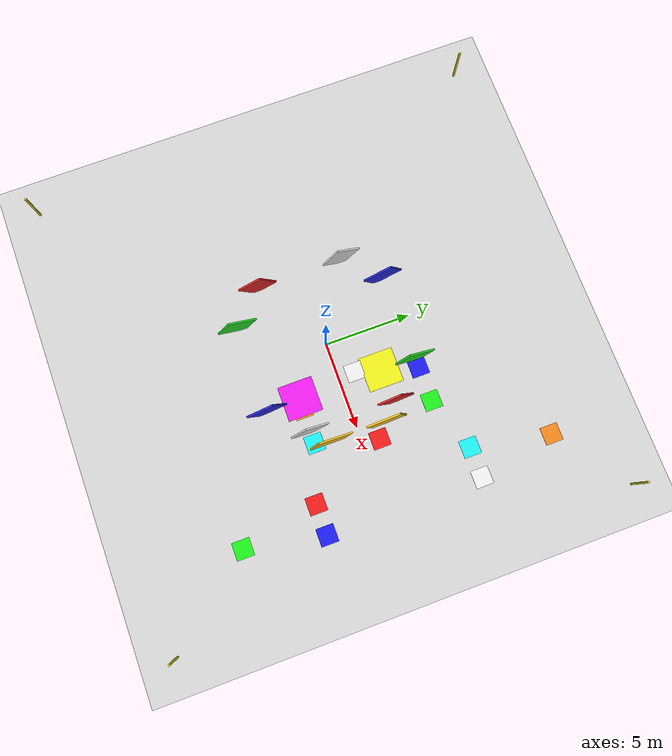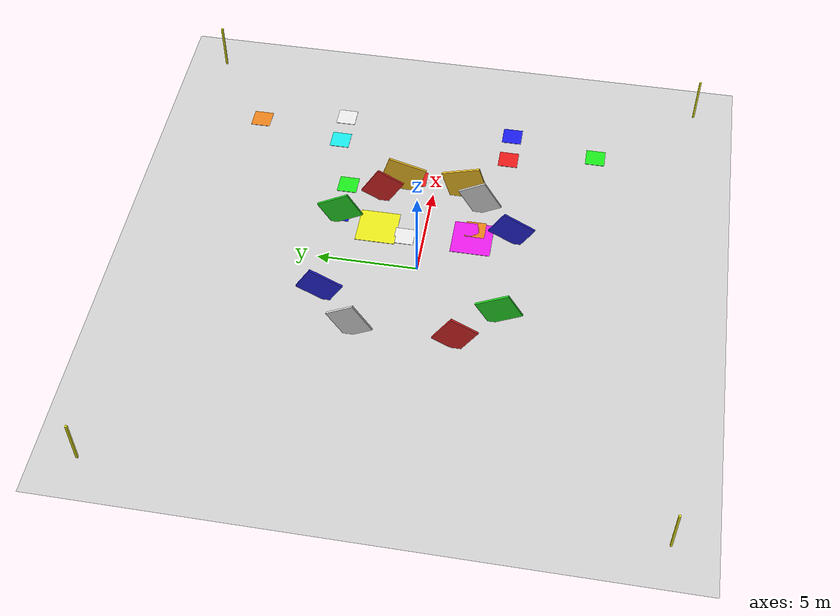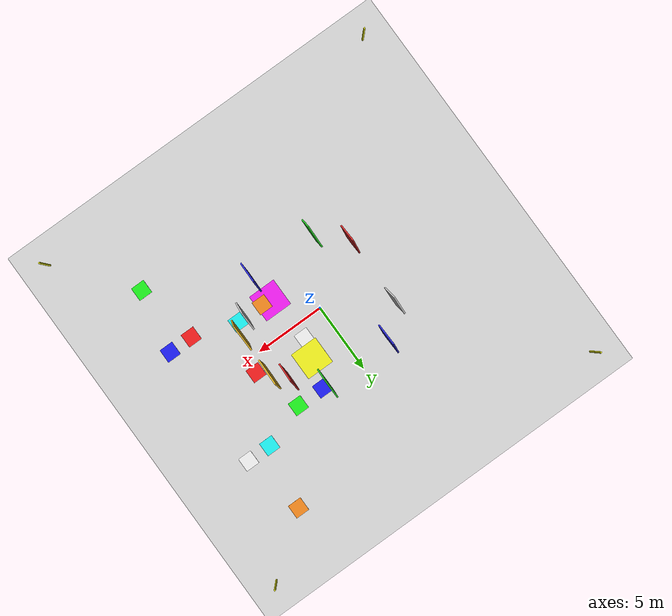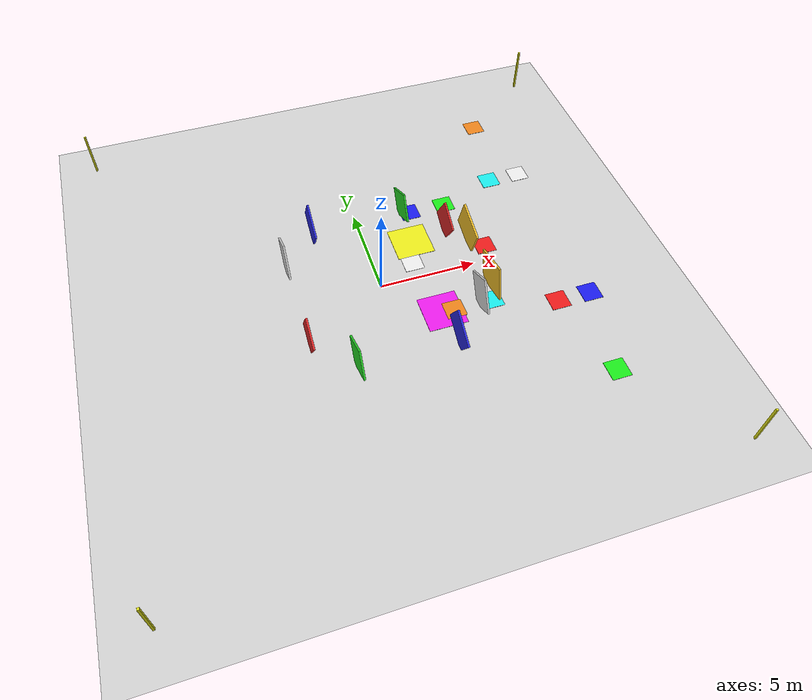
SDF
<?xml version="1.0" ?>
<sdf version="1.5">
  <world name="default">
    <include>
      <uri>model://sun</uri>
    </include>
    <include>
      <uri>model://ground_plane</uri>
    </include>
    <include>
      <uri>model://asphalt_plane</uri>
    </include>
    <physics name="default_physics" default="0" type="ode">
      <gravity>0 0 -9.8066</gravity>
      <ode>
        <solver>
          <type>quick</type>
          <iters>10</iters>
          <sor>1.3</sor>
          <use_dynamic_moi_rescaling>0</use_dynamic_moi_rescaling>
        </solver>
        <constraints>
          <cfm>0</cfm>
          <erp>0.2</erp>
          <contact_max_correcting_vel>100</contact_max_correcting_vel>
          <contact_surface_layer>0.001</contact_surface_layer>
        </constraints>
      </ode>
      <max_step_size>0.004</max_step_size>
      <real_time_factor>1</real_time_factor>
      <real_time_update_rate>250</real_time_update_rate>
    </physics>
    <scene>
      <ambient>0.4 0.4 0.4 1</ambient>
      <background>0.7 0.7 0.7 1</background>
      <shadows>0</shadows>
    </scene>

        <model name="slab_A">
      <pose>2.40 2.40 0.02 0 0 0</pose>
      <static>true</static>
      <link name="link">
        <collision name="collision"><geometry><box><size>2.00 2.00 0.02</size></box></geometry></collision>
        <visual name="visual"><geometry><box><size>2.00 2.00 0.02</size></box></geometry>
          <material><ambient>0.9 0.9 0.1 1</ambient><diffuse>0.9 0.9 0.1 1</diffuse></material>
        </visual>
      </link>
    </model>
    <model name="slab_B">
      <pose>2.40 -2.40 0.02 0 0 0</pose>
      <static>true</static>
      <link name="link">
        <collision name="collision"><geometry><box><size>2.00 2.00 0.02</size></box></geometry></collision>
        <visual name="visual"><geometry><box><size>2.00 2.00 0.02</size></box></geometry>
          <material><ambient>0.9 0.1 0.9 1</ambient><diffuse>0.9 0.1 0.9 1</diffuse></material>
        </visual>
      </link>
    </model>
    <model name="ring4_0">
      <pose>6.00 0.98 0.02 0 0 0</pose>
      <static>true</static>
      <link name="link">
        <collision name="collision"><geometry><box><size>1.00 1.00 0.02</size></box></geometry></collision>
        <visual name="visual"><geometry><box><size>1.00 1.00 0.02</size></box></geometry>
          <material><ambient>0.9 0.1 0.1 1</ambient><diffuse>0.9 0.1 0.1 1</diffuse></material>
        </visual>
      </link>
    </model>
    <model name="ring4_1">
      <pose>5.00 4.44 0.02 0 0 0</pose>
      <static>true</static>
      <link name="link">
        <collision name="collision"><geometry><box><size>1.00 1.00 0.02</size></box></geometry></collision>
        <visual name="visual"><geometry><box><size>1.00 1.00 0.02</size></box></geometry>
          <material><ambient>0.1 0.9 0.1 1</ambient><diffuse>0.1 0.9 0.1 1</diffuse></material>
        </visual>
      </link>
    </model>
    <model name="ring4_2">
      <pose>3.00 4.44 0.02 0 0 0</pose>
      <static>true</static>
      <link name="link">
        <collision name="collision"><geometry><box><size>1.00 1.00 0.02</size></box></geometry></collision>
        <visual name="visual"><geometry><box><size>1.00 1.00 0.02</size></box></geometry>
          <material><ambient>0.1 0.1 0.9 1</ambient><diffuse>0.1 0.1 0.9 1</diffuse></material>
        </visual>
      </link>
    </model>
    <model name="ring4_3">
      <pose>2.00 0.98 0.02 0 0 0</pose>
      <static>true</static>
      <link name="link">
        <collision name="collision"><geometry><box><size>1.00 1.00 0.02</size></box></geometry></collision>
        <visual name="visual"><geometry><box><size>1.00 1.00 0.02</size></box></geometry>
          <material><ambient>0.9 0.9 0.9 1</ambient><diffuse>0.9 0.9 0.9 1</diffuse></material>
        </visual>
      </link>
    </model>
    <model name="ring4_4">
      <pose>3.00 -2.48 0.02 0 0 0</pose>
      <static>true</static>
      <link name="link">
        <collision name="collision"><geometry><box><size>1.00 1.00 0.02</size></box></geometry></collision>
        <visual name="visual"><geometry><box><size>1.00 1.00 0.02</size></box></geometry>
          <material><ambient>0.9 0.5 0.1 1</ambient><diffuse>0.9 0.5 0.1 1</diffuse></material>
        </visual>
      </link>
    </model>
    <model name="ring4_5">
      <pose>5.00 -2.48 0.02 0 0 0</pose>
      <static>true</static>
      <link name="link">
        <collision name="collision"><geometry><box><size>1.00 1.00 0.02</size></box></geometry></collision>
        <visual name="visual"><geometry><box><size>1.00 1.00 0.02</size></box></geometry>
          <material><ambient>0.1 0.9 0.9 1</ambient><diffuse>0.1 0.9 0.9 1</diffuse></material>
        </visual>
      </link>
    </model>
    <model name="ring9_0">
      <pose>9.87 5.48 0.02 0 0 0</pose>
      <static>true</static>
      <link name="link">
        <collision name="collision"><geometry><box><size>1.00 1.00 0.02</size></box></geometry></collision>
        <visual name="visual"><geometry><box><size>1.00 1.00 0.02</size></box></geometry>
          <material><ambient>0.9 0.9 0.9 1</ambient><diffuse>0.9 0.9 0.9 1</diffuse></material>
        </visual>
      </link>
    </model>
    <model name="ring9_1">
      <pose>9.00 9.98 0.02 0 0 0</pose>
      <static>true</static>
      <link name="link">
        <collision name="collision"><geometry><box><size>1.00 1.00 0.02</size></box></geometry></collision>
        <visual name="visual"><geometry><box><size>1.00 1.00 0.02</size></box></geometry>
          <material><ambient>0.9 0.5 0.1 1</ambient><diffuse>0.9 0.5 0.1 1</diffuse></material>
        </visual>
      </link>
    </model>
    <model name="ring9_2">
      <pose>8.13 5.48 0.02 0 0 0</pose>
      <static>true</static>
      <link name="link">
        <collision name="collision"><geometry><box><size>1.00 1.00 0.02</size></box></geometry></collision>
        <visual name="visual"><geometry><box><size>1.00 1.00 0.02</size></box></geometry>
          <material><ambient>0.1 0.9 0.9 1</ambient><diffuse>0.1 0.9 0.9 1</diffuse></material>
        </visual>
      </link>
    </model>
    <model name="ring9_3">
      <pose>8.13 -3.52 0.02 0 0 0</pose>
      <static>true</static>
      <link name="link">
        <collision name="collision"><geometry><box><size>1.00 1.00 0.02</size></box></geometry></collision>
        <visual name="visual"><geometry><box><size>1.00 1.00 0.02</size></box></geometry>
          <material><ambient>0.9 0.1 0.1 1</ambient><diffuse>0.9 0.1 0.1 1</diffuse></material>
        </visual>
      </link>
    </model>
    <model name="ring9_4">
      <pose>9.00 -8.02 0.02 0 0 0</pose>
      <static>true</static>
      <link name="link">
        <collision name="collision"><geometry><box><size>1.00 1.00 0.02</size></box></geometry></collision>
        <visual name="visual"><geometry><box><size>1.00 1.00 0.02</size></box></geometry>
          <material><ambient>0.1 0.9 0.1 1</ambient><diffuse>0.1 0.9 0.1 1</diffuse></material>
        </visual>
      </link>
    </model>
    <model name="ring9_5">
      <pose>9.87 -3.52 0.02 0 0 0</pose>
      <static>true</static>
      <link name="link">
        <collision name="collision"><geometry><box><size>1.00 1.00 0.02</size></box></geometry></collision>
        <visual name="visual"><geometry><box><size>1.00 1.00 0.02</size></box></geometry>
          <material><ambient>0.1 0.1 0.9 1</ambient><diffuse>0.1 0.1 0.9 1</diffuse></material>
        </visual>
      </link>
    </model>
    <model name="pole_0">
      <pose>13.00 13.00 1.25 0 0 0</pose>
      <static>true</static>
      <link name="link">
        <collision name="collision"><geometry><box><size>0.10 0.10 2.50</size></box></geometry></collision>
        <visual name="visual"><geometry><box><size>0.10 0.10 2.50</size></box></geometry>
          <material><ambient>0.9 0.9 0.1 1</ambient><diffuse>0.9 0.9 0.1 1</diffuse></material>
        </visual>
      </link>
    </model>
    <model name="pole_1">
      <pose>-13.00 13.00 1.25 0 0 0</pose>
      <static>true</static>
      <link name="link">
        <collision name="collision"><geometry><box><size>0.10 0.10 2.50</size></box></geometry></collision>
        <visual name="visual"><geometry><box><size>0.10 0.10 2.50</size></box></geometry>
          <material><ambient>0.9 0.9 0.1 1</ambient><diffuse>0.9 0.9 0.1 1</diffuse></material>
        </visual>
      </link>
    </model>
    <model name="pole_2">
      <pose>13.00 -13.00 1.25 0 0 0</pose>
      <static>true</static>
      <link name="link">
        <collision name="collision"><geometry><box><size>0.10 0.10 2.50</size></box></geometry></collision>
        <visual name="visual"><geometry><box><size>0.10 0.10 2.50</size></box></geometry>
          <material><ambient>0.9 0.9 0.1 1</ambient><diffuse>0.9 0.9 0.1 1</diffuse></material>
        </visual>
      </link>
    </model>
    <model name="pole_3">
      <pose>-13.00 -13.00 1.25 0 0 0</pose>
      <static>true</static>
      <link name="link">
        <collision name="collision"><geometry><box><size>0.10 0.10 2.50</size></box></geometry></collision>
        <visual name="visual"><geometry><box><size>0.10 0.10 2.50</size></box></geometry>
          <material><ambient>0.9 0.9 0.1 1</ambient><diffuse>0.9 0.9 0.1 1</diffuse></material>
        </visual>
      </link>
    </model>
      <model name="board_0">
      <pose>4.330 2.500 0.9 3.6652 0 0</pose>
      <static>true</static>
      <link name="link">
        <collision name="collision"><geometry><box><size>0.10 1.50 1.80</size></box></geometry></collision>
        <visual name="visual"><geometry><box><size>0.10 1.50 1.80</size></box></geometry>
          <material><ambient>0.85 0.15 0.15 1</ambient><diffuse>0.85 0.15 0.15 1</diffuse></material>
        </visual>
      </link>
    </model>
    <model name="board_1">
      <pose>2.500 4.330 0.9 4.1888 0 0</pose>
      <static>true</static>
      <link name="link">
        <collision name="collision"><geometry><box><size>0.10 1.50 1.80</size></box></geometry></collision>
        <visual name="visual"><geometry><box><size>0.10 1.50 1.80</size></box></geometry>
          <material><ambient>0.15 0.85 0.15 1</ambient><diffuse>0.15 0.85 0.15 1</diffuse></material>
        </visual>
      </link>
    </model>
    <model name="board_2">
      <pose>-2.500 4.330 0.9 5.2360 0 0</pose>
      <static>true</static>
      <link name="link">
        <collision name="collision"><geometry><box><size>0.10 1.50 1.80</size></box></geometry></collision>
        <visual name="visual"><geometry><box><size>0.10 1.50 1.80</size></box></geometry>
          <material><ambient>0.15 0.15 0.85 1</ambient><diffuse>0.15 0.15 0.85 1</diffuse></material>
        </visual>
      </link>
    </model>
    <model name="board_3">
      <pose>-4.330 2.500 0.9 5.7596 0 0</pose>
      <static>true</static>
      <link name="link">
        <collision name="collision"><geometry><box><size>0.10 1.50 1.80</size></box></geometry></collision>
        <visual name="visual"><geometry><box><size>0.10 1.50 1.80</size></box></geometry>
          <material><ambient>0.85 0.85 0.85 1</ambient><diffuse>0.85 0.85 0.85 1</diffuse></material>
        </visual>
      </link>
    </model>
    <model name="board_4">
      <pose>-4.330 -2.500 0.9 6.8068 0 0</pose>
      <static>true</static>
      <link name="link">
        <collision name="collision"><geometry><box><size>0.10 1.50 1.80</size></box></geometry></collision>
        <visual name="visual"><geometry><box><size>0.10 1.50 1.80</size></box></geometry>
          <material><ambient>0.85 0.15 0.15 1</ambient><diffuse>0.85 0.15 0.15 1</diffuse></material>
        </visual>
      </link>
    </model>
    <model name="board_5">
      <pose>-2.500 -4.330 0.9 7.3304 0 0</pose>
      <static>true</static>
      <link name="link">
        <collision name="collision"><geometry><box><size>0.10 1.50 1.80</size></box></geometry></collision>
        <visual name="visual"><geometry><box><size>0.10 1.50 1.80</size></box></geometry>
          <material><ambient>0.15 0.85 0.15 1</ambient><diffuse>0.15 0.85 0.15 1</diffuse></material>
        </visual>
      </link>
    </model>
    <model name="board_6">
      <pose>2.500 -4.330 0.9 8.3776 0 0</pose>
      <static>true</static>
      <link name="link">
        <collision name="collision"><geometry><box><size>0.10 1.50 1.80</size></box></geometry></collision>
        <visual name="visual"><geometry><box><size>0.10 1.50 1.80</size></box></geometry>
          <material><ambient>0.15 0.15 0.85 1</ambient><diffuse>0.15 0.15 0.85 1</diffuse></material>
        </visual>
      </link>
    </model>
    <model name="board_7">
      <pose>4.330 -2.500 0.9 8.9012 0 0</pose>
      <static>true</static>
      <link name="link">
        <collision name="collision"><geometry><box><size>0.10 1.50 1.80</size></box></geometry></collision>
        <visual name="visual"><geometry><box><size>0.10 1.50 1.80</size></box></geometry>
          <material><ambient>0.85 0.85 0.85 1</ambient><diffuse>0.85 0.85 0.85 1</diffuse></material>
        </visual>
      </link>
    </model>
      <model name="mainwall_0">
      <pose>5.260 1.608 0.9 3.4383 0 0</pose>
      <static>true</static>
      <link name="link">
        <collision name="collision"><geometry><box><size>0.10 2.00 1.80</size></box></geometry></collision>
        <visual name="visual"><geometry><box><size>0.10 2.00 1.80</size></box></geometry>
          <material><ambient>0.95 0.75 0.15 1</ambient><diffuse>0.95 0.75 0.15 1</diffuse></material>
        </visual>
      </link>
    </model>
    <model name="mainwall_1">
      <pose>5.260 -1.608 0.9 2.8449 0 0</pose>
      <static>true</static>
      <link name="link">
        <collision name="collision"><geometry><box><size>0.10 2.00 1.80</size></box></geometry></collision>
        <visual name="visual"><geometry><box><size>0.10 2.00 1.80</size></box></geometry>
          <material><ambient>0.95 0.75 0.15 1</ambient><diffuse>0.95 0.75 0.15 1</diffuse></material>
        </visual>
      </link>
    </model>
  </world>
</sdf>
